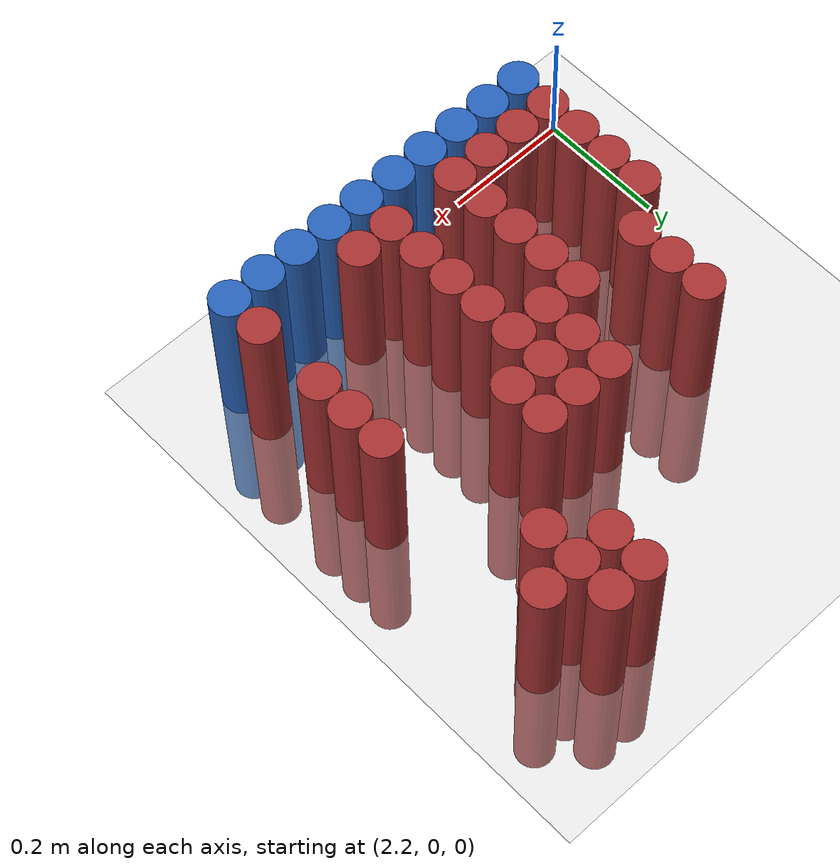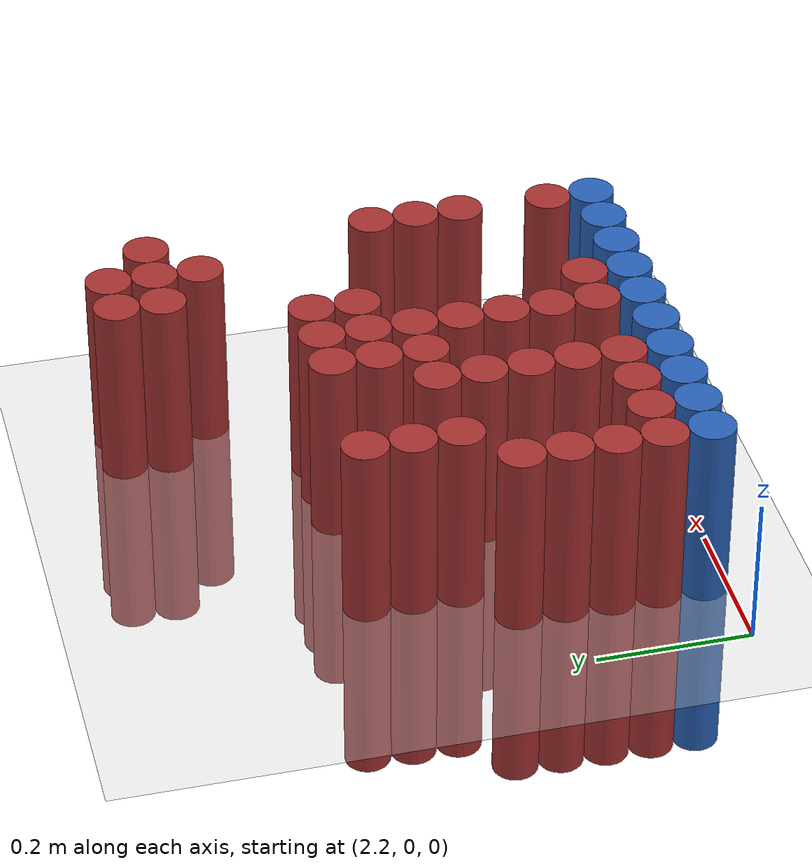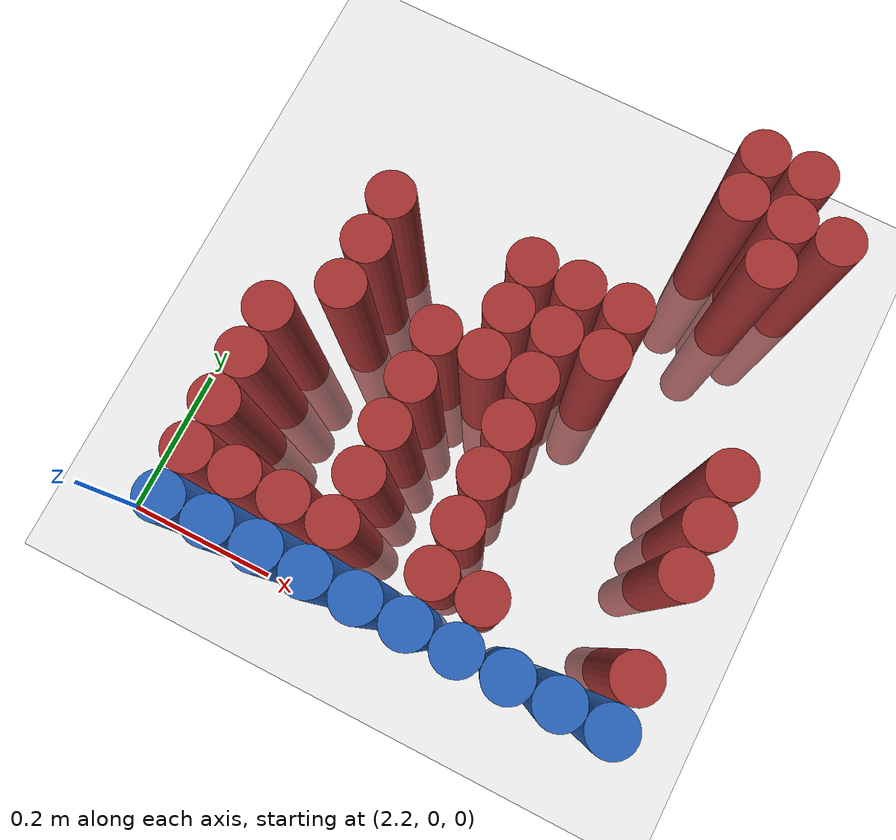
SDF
<sdf version="1.6">
 <world name="default">
  <model name="ground_plane">
   <static>1</static>
   <link name="link">
    <collision name="collision">
     <geometry><plane><normal>0 0 1</normal><size>100 100</size></plane></geometry>
     <surface><friction><ode><mu>100</mu><mu2>50</mu2></ode></friction></surface>
    </collision>
    <visual name="visual">
     <cast_shadows>0</cast_shadows>
     <geometry><plane><normal>0 0 1</normal><size>100 100</size></plane></geometry>
     <material>
      <script><uri>file://media/materials/scripts/gazebo.material</uri><name>Gazebo/Grey</name></script>
     </material>
    </visual>
   </link>
  </model>
  <model name="unit_cylinder_212">
   <static>1</static>
   <pose>2.730000 0.690000 0.000000 0.000000 0.000000 0.000000</pose>
   <link name="link">
    <inertial>
     <mass>1</mass>
     <inertia><ixx>0.145833</ixx><ixy>0</ixy><ixz>0</ixz><iyy>0.145833</iyy><iyz>0</iyz><izz>0.125</izz></inertia>
    </inertial>
    <collision name="collision">
     <geometry><cylinder><radius>0.030000</radius><length>0.5</length></cylinder></geometry>
    </collision>
    <visual name="visual">
     <geometry><cylinder><radius>0.030000</radius><length>0.5</length></cylinder></geometry>
     <material>
      <ambient>0.648000 0.192000 0.192000 1</ambient>
      <diffuse>0.648000 0.192000 0.192000 1</diffuse>
     </material>
     <material>
      <script><name>Gazebo/Grey</name><uri>file://media/materials/scripts/gazebo.material</uri></script>
     </material>
    </visual>
   </link>
  </model>
  <model name="unit_cylinder_213">
   <static>1</static>
   <pose>2.790000 0.690000 0.000000 0.000000 0.000000 0.000000</pose>
   <link name="link">
    <inertial>
     <mass>1</mass>
     <inertia><ixx>0.145833</ixx><ixy>0</ixy><ixz>0</ixz><iyy>0.145833</iyy><iyz>0</iyz><izz>0.125</izz></inertia>
    </inertial>
    <collision name="collision">
     <geometry><cylinder><radius>0.030000</radius><length>0.5</length></cylinder></geometry>
    </collision>
    <visual name="visual">
     <geometry><cylinder><radius>0.030000</radius><length>0.5</length></cylinder></geometry>
     <material>
      <ambient>0.648000 0.192000 0.192000 1</ambient>
      <diffuse>0.648000 0.192000 0.192000 1</diffuse>
     </material>
     <material>
      <script><name>Gazebo/Grey</name><uri>file://media/materials/scripts/gazebo.material</uri></script>
     </material>
    </visual>
   </link>
  </model>
  <model name="unit_cylinder_218">
   <static>1</static>
   <pose>2.730000 0.630000 0.000000 0.000000 0.000000 0.000000</pose>
   <link name="link">
    <inertial>
     <mass>1</mass>
     <inertia><ixx>0.145833</ixx><ixy>0</ixy><ixz>0</ixz><iyy>0.145833</iyy><iyz>0</iyz><izz>0.125</izz></inertia>
    </inertial>
    <collision name="collision">
     <geometry><cylinder><radius>0.030000</radius><length>0.5</length></cylinder></geometry>
    </collision>
    <visual name="visual">
     <geometry><cylinder><radius>0.030000</radius><length>0.5</length></cylinder></geometry>
     <material>
      <ambient>0.648000 0.192000 0.192000 1</ambient>
      <diffuse>0.648000 0.192000 0.192000 1</diffuse>
     </material>
     <material>
      <script><name>Gazebo/Grey</name><uri>file://media/materials/scripts/gazebo.material</uri></script>
     </material>
    </visual>
   </link>
  </model>
  <model name="unit_cylinder_219">
   <static>1</static>
   <pose>2.790000 0.630000 0.000000 0.000000 0.000000 0.000000</pose>
   <link name="link">
    <inertial>
     <mass>1</mass>
     <inertia><ixx>0.145833</ixx><ixy>0</ixy><ixz>0</ixz><iyy>0.145833</iyy><iyz>0</iyz><izz>0.125</izz></inertia>
    </inertial>
    <collision name="collision">
     <geometry><cylinder><radius>0.030000</radius><length>0.5</length></cylinder></geometry>
    </collision>
    <visual name="visual">
     <geometry><cylinder><radius>0.030000</radius><length>0.5</length></cylinder></geometry>
     <material>
      <ambient>0.648000 0.192000 0.192000 1</ambient>
      <diffuse>0.648000 0.192000 0.192000 1</diffuse>
     </material>
     <material>
      <script><name>Gazebo/Grey</name><uri>file://media/materials/scripts/gazebo.material</uri></script>
     </material>
    </visual>
   </link>
  </model>
  <model name="unit_cylinder_220">
   <static>1</static>
   <pose>2.850000 0.630000 0.000000 0.000000 0.000000 0.000000</pose>
   <link name="link">
    <inertial>
     <mass>1</mass>
     <inertia><ixx>0.145833</ixx><ixy>0</ixy><ixz>0</ixz><iyy>0.145833</iyy><iyz>0</iyz><izz>0.125</izz></inertia>
    </inertial>
    <collision name="collision">
     <geometry><cylinder><radius>0.030000</radius><length>0.5</length></cylinder></geometry>
    </collision>
    <visual name="visual">
     <geometry><cylinder><radius>0.030000</radius><length>0.5</length></cylinder></geometry>
     <material>
      <ambient>0.648000 0.192000 0.192000 1</ambient>
      <diffuse>0.648000 0.192000 0.192000 1</diffuse>
     </material>
     <material>
      <script><name>Gazebo/Grey</name><uri>file://media/materials/scripts/gazebo.material</uri></script>
     </material>
    </visual>
   </link>
  </model>
  <model name="unit_cylinder_225">
   <static>1</static>
   <pose>2.790000 0.570000 0.000000 0.000000 0.000000 0.000000</pose>
   <link name="link">
    <inertial>
     <mass>1</mass>
     <inertia><ixx>0.145833</ixx><ixy>0</ixy><ixz>0</ixz><iyy>0.145833</iyy><iyz>0</iyz><izz>0.125</izz></inertia>
    </inertial>
    <collision name="collision">
     <geometry><cylinder><radius>0.030000</radius><length>0.5</length></cylinder></geometry>
    </collision>
    <visual name="visual">
     <geometry><cylinder><radius>0.030000</radius><length>0.5</length></cylinder></geometry>
     <material>
      <ambient>0.648000 0.192000 0.192000 1</ambient>
      <diffuse>0.648000 0.192000 0.192000 1</diffuse>
     </material>
     <material>
      <script><name>Gazebo/Grey</name><uri>file://media/materials/scripts/gazebo.material</uri></script>
     </material>
    </visual>
   </link>
  </model>
  <model name="unit_cylinder_237">
   <static>1</static>
   <pose>2.370000 0.450000 0.000000 0.000000 0.000000 0.000000</pose>
   <link name="link">
    <inertial>
     <mass>1</mass>
     <inertia><ixx>0.145833</ixx><ixy>0</ixy><ixz>0</ixz><iyy>0.145833</iyy><iyz>0</iyz><izz>0.125</izz></inertia>
    </inertial>
    <collision name="collision">
     <geometry><cylinder><radius>0.030000</radius><length>0.5</length></cylinder></geometry>
    </collision>
    <visual name="visual">
     <geometry><cylinder><radius>0.030000</radius><length>0.5</length></cylinder></geometry>
     <material>
      <ambient>0.648000 0.192000 0.192000 1</ambient>
      <diffuse>0.648000 0.192000 0.192000 1</diffuse>
     </material>
     <material>
      <script><name>Gazebo/Grey</name><uri>file://media/materials/scripts/gazebo.material</uri></script>
     </material>
    </visual>
   </link>
  </model>
  <model name="unit_cylinder_238">
   <static>1</static>
   <pose>2.550000 0.450000 0.000000 0.000000 0.000000 0.000000</pose>
   <link name="link">
    <inertial>
     <mass>1</mass>
     <inertia><ixx>0.145833</ixx><ixy>0</ixy><ixz>0</ixz><iyy>0.145833</iyy><iyz>0</iyz><izz>0.125</izz></inertia>
    </inertial>
    <collision name="collision">
     <geometry><cylinder><radius>0.030000</radius><length>0.5</length></cylinder></geometry>
    </collision>
    <visual name="visual">
     <geometry><cylinder><radius>0.030000</radius><length>0.5</length></cylinder></geometry>
     <material>
      <ambient>0.648000 0.192000 0.192000 1</ambient>
      <diffuse>0.648000 0.192000 0.192000 1</diffuse>
     </material>
     <material>
      <script><name>Gazebo/Grey</name><uri>file://media/materials/scripts/gazebo.material</uri></script>
     </material>
    </visual>
   </link>
  </model>
  <model name="unit_cylinder_239">
   <static>1</static>
   <pose>2.610000 0.450000 0.000000 0.000000 0.000000 0.000000</pose>
   <link name="link">
    <inertial>
     <mass>1</mass>
     <inertia><ixx>0.145833</ixx><ixy>0</ixy><ixz>0</ixz><iyy>0.145833</iyy><iyz>0</iyz><izz>0.125</izz></inertia>
    </inertial>
    <collision name="collision">
     <geometry><cylinder><radius>0.030000</radius><length>0.5</length></cylinder></geometry>
    </collision>
    <visual name="visual">
     <geometry><cylinder><radius>0.030000</radius><length>0.5</length></cylinder></geometry>
     <material>
      <ambient>0.648000 0.192000 0.192000 1</ambient>
      <diffuse>0.648000 0.192000 0.192000 1</diffuse>
     </material>
     <material>
      <script><name>Gazebo/Grey</name><uri>file://media/materials/scripts/gazebo.material</uri></script>
     </material>
    </visual>
   </link>
  </model>
  <model name="unit_cylinder_240">
   <static>1</static>
   <pose>2.670000 0.450000 0.000000 0.000000 0.000000 0.000000</pose>
   <link name="link">
    <inertial>
     <mass>1</mass>
     <inertia><ixx>0.145833</ixx><ixy>0</ixy><ixz>0</ixz><iyy>0.145833</iyy><iyz>0</iyz><izz>0.125</izz></inertia>
    </inertial>
    <collision name="collision">
     <geometry><cylinder><radius>0.030000</radius><length>0.5</length></cylinder></geometry>
    </collision>
    <visual name="visual">
     <geometry><cylinder><radius>0.030000</radius><length>0.5</length></cylinder></geometry>
     <material>
      <ambient>0.648000 0.192000 0.192000 1</ambient>
      <diffuse>0.648000 0.192000 0.192000 1</diffuse>
     </material>
     <material>
      <script><name>Gazebo/Grey</name><uri>file://media/materials/scripts/gazebo.material</uri></script>
     </material>
    </visual>
   </link>
  </model>
  <model name="unit_cylinder_243">
   <static>1</static>
   <pose>2.370000 0.390000 0.000000 0.000000 0.000000 0.000000</pose>
   <link name="link">
    <inertial>
     <mass>1</mass>
     <inertia><ixx>0.145833</ixx><ixy>0</ixy><ixz>0</ixz><iyy>0.145833</iyy><iyz>0</iyz><izz>0.125</izz></inertia>
    </inertial>
    <collision name="collision">
     <geometry><cylinder><radius>0.030000</radius><length>0.5</length></cylinder></geometry>
    </collision>
    <visual name="visual">
     <geometry><cylinder><radius>0.030000</radius><length>0.5</length></cylinder></geometry>
     <material>
      <ambient>0.648000 0.192000 0.192000 1</ambient>
      <diffuse>0.648000 0.192000 0.192000 1</diffuse>
     </material>
     <material>
      <script><name>Gazebo/Grey</name><uri>file://media/materials/scripts/gazebo.material</uri></script>
     </material>
    </visual>
   </link>
  </model>
  <model name="unit_cylinder_244">
   <static>1</static>
   <pose>2.550000 0.390000 0.000000 0.000000 0.000000 0.000000</pose>
   <link name="link">
    <inertial>
     <mass>1</mass>
     <inertia><ixx>0.145833</ixx><ixy>0</ixy><ixz>0</ixz><iyy>0.145833</iyy><iyz>0</iyz><izz>0.125</izz></inertia>
    </inertial>
    <collision name="collision">
     <geometry><cylinder><radius>0.030000</radius><length>0.5</length></cylinder></geometry>
    </collision>
    <visual name="visual">
     <geometry><cylinder><radius>0.030000</radius><length>0.5</length></cylinder></geometry>
     <material>
      <ambient>0.648000 0.192000 0.192000 1</ambient>
      <diffuse>0.648000 0.192000 0.192000 1</diffuse>
     </material>
     <material>
      <script><name>Gazebo/Grey</name><uri>file://media/materials/scripts/gazebo.material</uri></script>
     </material>
    </visual>
   </link>
  </model>
  <model name="unit_cylinder_245">
   <static>1</static>
   <pose>2.610000 0.390000 0.000000 0.000000 0.000000 0.000000</pose>
   <link name="link">
    <inertial>
     <mass>1</mass>
     <inertia><ixx>0.145833</ixx><ixy>0</ixy><ixz>0</ixz><iyy>0.145833</iyy><iyz>0</iyz><izz>0.125</izz></inertia>
    </inertial>
    <collision name="collision">
     <geometry><cylinder><radius>0.030000</radius><length>0.5</length></cylinder></geometry>
    </collision>
    <visual name="visual">
     <geometry><cylinder><radius>0.030000</radius><length>0.5</length></cylinder></geometry>
     <material>
      <ambient>0.648000 0.192000 0.192000 1</ambient>
      <diffuse>0.648000 0.192000 0.192000 1</diffuse>
     </material>
     <material>
      <script><name>Gazebo/Grey</name><uri>file://media/materials/scripts/gazebo.material</uri></script>
     </material>
    </visual>
   </link>
  </model>
  <model name="unit_cylinder_246">
   <static>1</static>
   <pose>2.670000 0.390000 0.000000 0.000000 0.000000 0.000000</pose>
   <link name="link">
    <inertial>
     <mass>1</mass>
     <inertia><ixx>0.145833</ixx><ixy>0</ixy><ixz>0</ixz><iyy>0.145833</iyy><iyz>0</iyz><izz>0.125</izz></inertia>
    </inertial>
    <collision name="collision">
     <geometry><cylinder><radius>0.030000</radius><length>0.5</length></cylinder></geometry>
    </collision>
    <visual name="visual">
     <geometry><cylinder><radius>0.030000</radius><length>0.5</length></cylinder></geometry>
     <material>
      <ambient>0.648000 0.192000 0.192000 1</ambient>
      <diffuse>0.648000 0.192000 0.192000 1</diffuse>
     </material>
     <material>
      <script><name>Gazebo/Grey</name><uri>file://media/materials/scripts/gazebo.material</uri></script>
     </material>
    </visual>
   </link>
  </model>
  <model name="unit_cylinder_250">
   <static>1</static>
   <pose>2.370000 0.330000 0.000000 0.000000 0.000000 0.000000</pose>
   <link name="link">
    <inertial>
     <mass>1</mass>
     <inertia><ixx>0.145833</ixx><ixy>0</ixy><ixz>0</ixz><iyy>0.145833</iyy><iyz>0</iyz><izz>0.125</izz></inertia>
    </inertial>
    <collision name="collision">
     <geometry><cylinder><radius>0.030000</radius><length>0.5</length></cylinder></geometry>
    </collision>
    <visual name="visual">
     <geometry><cylinder><radius>0.030000</radius><length>0.5</length></cylinder></geometry>
     <material>
      <ambient>0.648000 0.192000 0.192000 1</ambient>
      <diffuse>0.648000 0.192000 0.192000 1</diffuse>
     </material>
     <material>
      <script><name>Gazebo/Grey</name><uri>file://media/materials/scripts/gazebo.material</uri></script>
     </material>
    </visual>
   </link>
  </model>
  <model name="unit_cylinder_251">
   <static>1</static>
   <pose>2.490000 0.330000 0.000000 0.000000 0.000000 0.000000</pose>
   <link name="link">
    <inertial>
     <mass>1</mass>
     <inertia><ixx>0.145833</ixx><ixy>0</ixy><ixz>0</ixz><iyy>0.145833</iyy><iyz>0</iyz><izz>0.125</izz></inertia>
    </inertial>
    <collision name="collision">
     <geometry><cylinder><radius>0.030000</radius><length>0.5</length></cylinder></geometry>
    </collision>
    <visual name="visual">
     <geometry><cylinder><radius>0.030000</radius><length>0.5</length></cylinder></geometry>
     <material>
      <ambient>0.648000 0.192000 0.192000 1</ambient>
      <diffuse>0.648000 0.192000 0.192000 1</diffuse>
     </material>
     <material>
      <script><name>Gazebo/Grey</name><uri>file://media/materials/scripts/gazebo.material</uri></script>
     </material>
    </visual>
   </link>
  </model>
  <model name="unit_cylinder_252">
   <static>1</static>
   <pose>2.550000 0.330000 0.000000 0.000000 0.000000 0.000000</pose>
   <link name="link">
    <inertial>
     <mass>1</mass>
     <inertia><ixx>0.145833</ixx><ixy>0</ixy><ixz>0</ixz><iyy>0.145833</iyy><iyz>0</iyz><izz>0.125</izz></inertia>
    </inertial>
    <collision name="collision">
     <geometry><cylinder><radius>0.030000</radius><length>0.5</length></cylinder></geometry>
    </collision>
    <visual name="visual">
     <geometry><cylinder><radius>0.030000</radius><length>0.5</length></cylinder></geometry>
     <material>
      <ambient>0.648000 0.192000 0.192000 1</ambient>
      <diffuse>0.648000 0.192000 0.192000 1</diffuse>
     </material>
     <material>
      <script><name>Gazebo/Grey</name><uri>file://media/materials/scripts/gazebo.material</uri></script>
     </material>
    </visual>
   </link>
  </model>
  <model name="unit_cylinder_253">
   <static>1</static>
   <pose>2.610000 0.330000 0.000000 0.000000 0.000000 0.000000</pose>
   <link name="link">
    <inertial>
     <mass>1</mass>
     <inertia><ixx>0.145833</ixx><ixy>0</ixy><ixz>0</ixz><iyy>0.145833</iyy><iyz>0</iyz><izz>0.125</izz></inertia>
    </inertial>
    <collision name="collision">
     <geometry><cylinder><radius>0.030000</radius><length>0.5</length></cylinder></geometry>
    </collision>
    <visual name="visual">
     <geometry><cylinder><radius>0.030000</radius><length>0.5</length></cylinder></geometry>
     <material>
      <ambient>0.648000 0.192000 0.192000 1</ambient>
      <diffuse>0.648000 0.192000 0.192000 1</diffuse>
     </material>
     <material>
      <script><name>Gazebo/Grey</name><uri>file://media/materials/scripts/gazebo.material</uri></script>
     </material>
    </visual>
   </link>
  </model>
  <model name="unit_cylinder_254">
   <static>1</static>
   <pose>2.850000 0.330000 0.000000 0.000000 0.000000 0.000000</pose>
   <link name="link">
    <inertial>
     <mass>1</mass>
     <inertia><ixx>0.145833</ixx><ixy>0</ixy><ixz>0</ixz><iyy>0.145833</iyy><iyz>0</iyz><izz>0.125</izz></inertia>
    </inertial>
    <collision name="collision">
     <geometry><cylinder><radius>0.030000</radius><length>0.5</length></cylinder></geometry>
    </collision>
    <visual name="visual">
     <geometry><cylinder><radius>0.030000</radius><length>0.5</length></cylinder></geometry>
     <material>
      <ambient>0.648000 0.192000 0.192000 1</ambient>
      <diffuse>0.648000 0.192000 0.192000 1</diffuse>
     </material>
     <material>
      <script><name>Gazebo/Grey</name><uri>file://media/materials/scripts/gazebo.material</uri></script>
     </material>
    </visual>
   </link>
  </model>
  <model name="unit_cylinder_259">
   <static>1</static>
   <pose>2.310000 0.270000 0.000000 0.000000 0.000000 0.000000</pose>
   <link name="link">
    <inertial>
     <mass>1</mass>
     <inertia><ixx>0.145833</ixx><ixy>0</ixy><ixz>0</ixz><iyy>0.145833</iyy><iyz>0</iyz><izz>0.125</izz></inertia>
    </inertial>
    <collision name="collision">
     <geometry><cylinder><radius>0.030000</radius><length>0.5</length></cylinder></geometry>
    </collision>
    <visual name="visual">
     <geometry><cylinder><radius>0.030000</radius><length>0.5</length></cylinder></geometry>
     <material>
      <ambient>0.648000 0.192000 0.192000 1</ambient>
      <diffuse>0.648000 0.192000 0.192000 1</diffuse>
     </material>
     <material>
      <script><name>Gazebo/Grey</name><uri>file://media/materials/scripts/gazebo.material</uri></script>
     </material>
    </visual>
   </link>
  </model>
  <model name="unit_cylinder_260">
   <static>1</static>
   <pose>2.490000 0.270000 0.000000 0.000000 0.000000 0.000000</pose>
   <link name="link">
    <inertial>
     <mass>1</mass>
     <inertia><ixx>0.145833</ixx><ixy>0</ixy><ixz>0</ixz><iyy>0.145833</iyy><iyz>0</iyz><izz>0.125</izz></inertia>
    </inertial>
    <collision name="collision">
     <geometry><cylinder><radius>0.030000</radius><length>0.5</length></cylinder></geometry>
    </collision>
    <visual name="visual">
     <geometry><cylinder><radius>0.030000</radius><length>0.5</length></cylinder></geometry>
     <material>
      <ambient>0.648000 0.192000 0.192000 1</ambient>
      <diffuse>0.648000 0.192000 0.192000 1</diffuse>
     </material>
     <material>
      <script><name>Gazebo/Grey</name><uri>file://media/materials/scripts/gazebo.material</uri></script>
     </material>
    </visual>
   </link>
  </model>
  <model name="unit_cylinder_261">
   <static>1</static>
   <pose>2.610000 0.270000 0.000000 0.000000 0.000000 0.000000</pose>
   <link name="link">
    <inertial>
     <mass>1</mass>
     <inertia><ixx>0.145833</ixx><ixy>0</ixy><ixz>0</ixz><iyy>0.145833</iyy><iyz>0</iyz><izz>0.125</izz></inertia>
    </inertial>
    <collision name="collision">
     <geometry><cylinder><radius>0.030000</radius><length>0.5</length></cylinder></geometry>
    </collision>
    <visual name="visual">
     <geometry><cylinder><radius>0.030000</radius><length>0.5</length></cylinder></geometry>
     <material>
      <ambient>0.648000 0.192000 0.192000 1</ambient>
      <diffuse>0.648000 0.192000 0.192000 1</diffuse>
     </material>
     <material>
      <script><name>Gazebo/Grey</name><uri>file://media/materials/scripts/gazebo.material</uri></script>
     </material>
    </visual>
   </link>
  </model>
  <model name="unit_cylinder_262">
   <static>1</static>
   <pose>2.850000 0.270000 0.000000 0.000000 0.000000 0.000000</pose>
   <link name="link">
    <inertial>
     <mass>1</mass>
     <inertia><ixx>0.145833</ixx><ixy>0</ixy><ixz>0</ixz><iyy>0.145833</iyy><iyz>0</iyz><izz>0.125</izz></inertia>
    </inertial>
    <collision name="collision">
     <geometry><cylinder><radius>0.030000</radius><length>0.5</length></cylinder></geometry>
    </collision>
    <visual name="visual">
     <geometry><cylinder><radius>0.030000</radius><length>0.5</length></cylinder></geometry>
     <material>
      <ambient>0.648000 0.192000 0.192000 1</ambient>
      <diffuse>0.648000 0.192000 0.192000 1</diffuse>
     </material>
     <material>
      <script><name>Gazebo/Grey</name><uri>file://media/materials/scripts/gazebo.material</uri></script>
     </material>
    </visual>
   </link>
  </model>
  <model name="unit_cylinder_268">
   <static>1</static>
   <pose>2.310000 0.210000 0.000000 0.000000 0.000000 0.000000</pose>
   <link name="link">
    <inertial>
     <mass>1</mass>
     <inertia><ixx>0.145833</ixx><ixy>0</ixy><ixz>0</ixz><iyy>0.145833</iyy><iyz>0</iyz><izz>0.125</izz></inertia>
    </inertial>
    <collision name="collision">
     <geometry><cylinder><radius>0.030000</radius><length>0.5</length></cylinder></geometry>
    </collision>
    <visual name="visual">
     <geometry><cylinder><radius>0.030000</radius><length>0.5</length></cylinder></geometry>
     <material>
      <ambient>0.648000 0.192000 0.192000 1</ambient>
      <diffuse>0.648000 0.192000 0.192000 1</diffuse>
     </material>
     <material>
      <script><name>Gazebo/Grey</name><uri>file://media/materials/scripts/gazebo.material</uri></script>
     </material>
    </visual>
   </link>
  </model>
  <model name="unit_cylinder_269">
   <static>1</static>
   <pose>2.490000 0.210000 0.000000 0.000000 0.000000 0.000000</pose>
   <link name="link">
    <inertial>
     <mass>1</mass>
     <inertia><ixx>0.145833</ixx><ixy>0</ixy><ixz>0</ixz><iyy>0.145833</iyy><iyz>0</iyz><izz>0.125</izz></inertia>
    </inertial>
    <collision name="collision">
     <geometry><cylinder><radius>0.030000</radius><length>0.5</length></cylinder></geometry>
    </collision>
    <visual name="visual">
     <geometry><cylinder><radius>0.030000</radius><length>0.5</length></cylinder></geometry>
     <material>
      <ambient>0.648000 0.192000 0.192000 1</ambient>
      <diffuse>0.648000 0.192000 0.192000 1</diffuse>
     </material>
     <material>
      <script><name>Gazebo/Grey</name><uri>file://media/materials/scripts/gazebo.material</uri></script>
     </material>
    </visual>
   </link>
  </model>
  <model name="unit_cylinder_270">
   <static>1</static>
   <pose>2.610000 0.210000 0.000000 0.000000 0.000000 0.000000</pose>
   <link name="link">
    <inertial>
     <mass>1</mass>
     <inertia><ixx>0.145833</ixx><ixy>0</ixy><ixz>0</ixz><iyy>0.145833</iyy><iyz>0</iyz><izz>0.125</izz></inertia>
    </inertial>
    <collision name="collision">
     <geometry><cylinder><radius>0.030000</radius><length>0.5</length></cylinder></geometry>
    </collision>
    <visual name="visual">
     <geometry><cylinder><radius>0.030000</radius><length>0.5</length></cylinder></geometry>
     <material>
      <ambient>0.648000 0.192000 0.192000 1</ambient>
      <diffuse>0.648000 0.192000 0.192000 1</diffuse>
     </material>
     <material>
      <script><name>Gazebo/Grey</name><uri>file://media/materials/scripts/gazebo.material</uri></script>
     </material>
    </visual>
   </link>
  </model>
  <model name="unit_cylinder_271">
   <static>1</static>
   <pose>2.850000 0.210000 0.000000 0.000000 0.000000 0.000000</pose>
   <link name="link">
    <inertial>
     <mass>1</mass>
     <inertia><ixx>0.145833</ixx><ixy>0</ixy><ixz>0</ixz><iyy>0.145833</iyy><iyz>0</iyz><izz>0.125</izz></inertia>
    </inertial>
    <collision name="collision">
     <geometry><cylinder><radius>0.030000</radius><length>0.5</length></cylinder></geometry>
    </collision>
    <visual name="visual">
     <geometry><cylinder><radius>0.030000</radius><length>0.5</length></cylinder></geometry>
     <material>
      <ambient>0.648000 0.192000 0.192000 1</ambient>
      <diffuse>0.648000 0.192000 0.192000 1</diffuse>
     </material>
     <material>
      <script><name>Gazebo/Grey</name><uri>file://media/materials/scripts/gazebo.material</uri></script>
     </material>
    </visual>
   </link>
  </model>
  <model name="unit_cylinder_275">
   <static>1</static>
   <pose>2.310000 0.150000 0.000000 0.000000 0.000000 0.000000</pose>
   <link name="link">
    <inertial>
     <mass>1</mass>
     <inertia><ixx>0.145833</ixx><ixy>0</ixy><ixz>0</ixz><iyy>0.145833</iyy><iyz>0</iyz><izz>0.125</izz></inertia>
    </inertial>
    <collision name="collision">
     <geometry><cylinder><radius>0.030000</radius><length>0.5</length></cylinder></geometry>
    </collision>
    <visual name="visual">
     <geometry><cylinder><radius>0.030000</radius><length>0.5</length></cylinder></geometry>
     <material>
      <ambient>0.648000 0.192000 0.192000 1</ambient>
      <diffuse>0.648000 0.192000 0.192000 1</diffuse>
     </material>
     <material>
      <script><name>Gazebo/Grey</name><uri>file://media/materials/scripts/gazebo.material</uri></script>
     </material>
    </visual>
   </link>
  </model>
  <model name="unit_cylinder_276">
   <static>1</static>
   <pose>2.490000 0.150000 0.000000 0.000000 0.000000 0.000000</pose>
   <link name="link">
    <inertial>
     <mass>1</mass>
     <inertia><ixx>0.145833</ixx><ixy>0</ixy><ixz>0</ixz><iyy>0.145833</iyy><iyz>0</iyz><izz>0.125</izz></inertia>
    </inertial>
    <collision name="collision">
     <geometry><cylinder><radius>0.030000</radius><length>0.5</length></cylinder></geometry>
    </collision>
    <visual name="visual">
     <geometry><cylinder><radius>0.030000</radius><length>0.5</length></cylinder></geometry>
     <material>
      <ambient>0.648000 0.192000 0.192000 1</ambient>
      <diffuse>0.648000 0.192000 0.192000 1</diffuse>
     </material>
     <material>
      <script><name>Gazebo/Grey</name><uri>file://media/materials/scripts/gazebo.material</uri></script>
     </material>
    </visual>
   </link>
  </model>
  <model name="unit_cylinder_277">
   <static>1</static>
   <pose>2.610000 0.150000 0.000000 0.000000 0.000000 0.000000</pose>
   <link name="link">
    <inertial>
     <mass>1</mass>
     <inertia><ixx>0.145833</ixx><ixy>0</ixy><ixz>0</ixz><iyy>0.145833</iyy><iyz>0</iyz><izz>0.125</izz></inertia>
    </inertial>
    <collision name="collision">
     <geometry><cylinder><radius>0.030000</radius><length>0.5</length></cylinder></geometry>
    </collision>
    <visual name="visual">
     <geometry><cylinder><radius>0.030000</radius><length>0.5</length></cylinder></geometry>
     <material>
      <ambient>0.648000 0.192000 0.192000 1</ambient>
      <diffuse>0.648000 0.192000 0.192000 1</diffuse>
     </material>
     <material>
      <script><name>Gazebo/Grey</name><uri>file://media/materials/scripts/gazebo.material</uri></script>
     </material>
    </visual>
   </link>
  </model>
  <model name="unit_cylinder_285">
   <static>1</static>
   <pose>2.310000 0.090000 0.000000 0.000000 0.000000 0.000000</pose>
   <link name="link">
    <inertial>
     <mass>1</mass>
     <inertia><ixx>0.145833</ixx><ixy>0</ixy><ixz>0</ixz><iyy>0.145833</iyy><iyz>0</iyz><izz>0.125</izz></inertia>
    </inertial>
    <collision name="collision">
     <geometry><cylinder><radius>0.030000</radius><length>0.5</length></cylinder></geometry>
    </collision>
    <visual name="visual">
     <geometry><cylinder><radius>0.030000</radius><length>0.5</length></cylinder></geometry>
     <material>
      <ambient>0.648000 0.192000 0.192000 1</ambient>
      <diffuse>0.648000 0.192000 0.192000 1</diffuse>
     </material>
     <material>
      <script><name>Gazebo/Grey</name><uri>file://media/materials/scripts/gazebo.material</uri></script>
     </material>
    </visual>
   </link>
  </model>
  <model name="unit_cylinder_286">
   <static>1</static>
   <pose>2.370000 0.090000 0.000000 0.000000 0.000000 0.000000</pose>
   <link name="link">
    <inertial>
     <mass>1</mass>
     <inertia><ixx>0.145833</ixx><ixy>0</ixy><ixz>0</ixz><iyy>0.145833</iyy><iyz>0</iyz><izz>0.125</izz></inertia>
    </inertial>
    <collision name="collision">
     <geometry><cylinder><radius>0.030000</radius><length>0.5</length></cylinder></geometry>
    </collision>
    <visual name="visual">
     <geometry><cylinder><radius>0.030000</radius><length>0.5</length></cylinder></geometry>
     <material>
      <ambient>0.648000 0.192000 0.192000 1</ambient>
      <diffuse>0.648000 0.192000 0.192000 1</diffuse>
     </material>
     <material>
      <script><name>Gazebo/Grey</name><uri>file://media/materials/scripts/gazebo.material</uri></script>
     </material>
    </visual>
   </link>
  </model>
  <model name="unit_cylinder_287">
   <static>1</static>
   <pose>2.430000 0.090000 0.000000 0.000000 0.000000 0.000000</pose>
   <link name="link">
    <inertial>
     <mass>1</mass>
     <inertia><ixx>0.145833</ixx><ixy>0</ixy><ixz>0</ixz><iyy>0.145833</iyy><iyz>0</iyz><izz>0.125</izz></inertia>
    </inertial>
    <collision name="collision">
     <geometry><cylinder><radius>0.030000</radius><length>0.5</length></cylinder></geometry>
    </collision>
    <visual name="visual">
     <geometry><cylinder><radius>0.030000</radius><length>0.5</length></cylinder></geometry>
     <material>
      <ambient>0.648000 0.192000 0.192000 1</ambient>
      <diffuse>0.648000 0.192000 0.192000 1</diffuse>
     </material>
     <material>
      <script><name>Gazebo/Grey</name><uri>file://media/materials/scripts/gazebo.material</uri></script>
     </material>
    </visual>
   </link>
  </model>
  <model name="unit_cylinder_288">
   <static>1</static>
   <pose>2.490000 0.090000 0.000000 0.000000 0.000000 0.000000</pose>
   <link name="link">
    <inertial>
     <mass>1</mass>
     <inertia><ixx>0.145833</ixx><ixy>0</ixy><ixz>0</ixz><iyy>0.145833</iyy><iyz>0</iyz><izz>0.125</izz></inertia>
    </inertial>
    <collision name="collision">
     <geometry><cylinder><radius>0.030000</radius><length>0.5</length></cylinder></geometry>
    </collision>
    <visual name="visual">
     <geometry><cylinder><radius>0.030000</radius><length>0.5</length></cylinder></geometry>
     <material>
      <ambient>0.648000 0.192000 0.192000 1</ambient>
      <diffuse>0.648000 0.192000 0.192000 1</diffuse>
     </material>
     <material>
      <script><name>Gazebo/Grey</name><uri>file://media/materials/scripts/gazebo.material</uri></script>
     </material>
    </visual>
   </link>
  </model>
  <model name="unit_cylinder_289">
   <static>1</static>
   <pose>2.610000 0.090000 0.000000 0.000000 0.000000 0.000000</pose>
   <link name="link">
    <inertial>
     <mass>1</mass>
     <inertia><ixx>0.145833</ixx><ixy>0</ixy><ixz>0</ixz><iyy>0.145833</iyy><iyz>0</iyz><izz>0.125</izz></inertia>
    </inertial>
    <collision name="collision">
     <geometry><cylinder><radius>0.030000</radius><length>0.5</length></cylinder></geometry>
    </collision>
    <visual name="visual">
     <geometry><cylinder><radius>0.030000</radius><length>0.5</length></cylinder></geometry>
     <material>
      <ambient>0.648000 0.192000 0.192000 1</ambient>
      <diffuse>0.648000 0.192000 0.192000 1</diffuse>
     </material>
     <material>
      <script><name>Gazebo/Grey</name><uri>file://media/materials/scripts/gazebo.material</uri></script>
     </material>
    </visual>
   </link>
  </model>
  <model name="unit_cylinder_290">
   <static>1</static>
   <pose>2.670000 0.090000 0.000000 0.000000 0.000000 0.000000</pose>
   <link name="link">
    <inertial>
     <mass>1</mass>
     <inertia><ixx>0.145833</ixx><ixy>0</ixy><ixz>0</ixz><iyy>0.145833</iyy><iyz>0</iyz><izz>0.125</izz></inertia>
    </inertial>
    <collision name="collision">
     <geometry><cylinder><radius>0.030000</radius><length>0.5</length></cylinder></geometry>
    </collision>
    <visual name="visual">
     <geometry><cylinder><radius>0.030000</radius><length>0.5</length></cylinder></geometry>
     <material>
      <ambient>0.648000 0.192000 0.192000 1</ambient>
      <diffuse>0.648000 0.192000 0.192000 1</diffuse>
     </material>
     <material>
      <script><name>Gazebo/Grey</name><uri>file://media/materials/scripts/gazebo.material</uri></script>
     </material>
    </visual>
   </link>
  </model>
  <model name="unit_cylinder_291">
   <static>1</static>
   <pose>2.850000 0.090000 0.000000 0.000000 0.000000 0.000000</pose>
   <link name="link">
    <inertial>
     <mass>1</mass>
     <inertia><ixx>0.145833</ixx><ixy>0</ixy><ixz>0</ixz><iyy>0.145833</iyy><iyz>0</iyz><izz>0.125</izz></inertia>
    </inertial>
    <collision name="collision">
     <geometry><cylinder><radius>0.030000</radius><length>0.5</length></cylinder></geometry>
    </collision>
    <visual name="visual">
     <geometry><cylinder><radius>0.030000</radius><length>0.5</length></cylinder></geometry>
     <material>
      <ambient>0.648000 0.192000 0.192000 1</ambient>
      <diffuse>0.648000 0.192000 0.192000 1</diffuse>
     </material>
     <material>
      <script><name>Gazebo/Grey</name><uri>file://media/materials/scripts/gazebo.material</uri></script>
     </material>
    </visual>
   </link>
  </model>
  <model name="unit_cylinder_307">
   <static>1</static>
   <pose>2.310000 0.030000 0.000000 0.000000 0.000000 0.000000</pose>
   <link name="link">
    <inertial>
     <mass>1</mass>
     <inertia><ixx>0.145833</ixx><ixy>0</ixy><ixz>0</ixz><iyy>0.145833</iyy><iyz>0</iyz><izz>0.125</izz></inertia>
    </inertial>
    <collision name="collision">
     <geometry><cylinder><radius>0.030000</radius><length>0.5</length></cylinder></geometry>
    </collision>
    <visual name="visual">
     <geometry><cylinder><radius>0.030000</radius><length>0.5</length></cylinder></geometry>
     <material>
      <ambient>0.152000 0.379000 0.720000 1</ambient>
      <diffuse>0.152000 0.379000 0.720000 1</diffuse>
     </material>
     <material>
      <script><name>Gazebo/Grey</name><uri>file://media/materials/scripts/gazebo.material</uri></script>
     </material>
    </visual>
   </link>
  </model>
  <model name="unit_cylinder_308">
   <static>1</static>
   <pose>2.370000 0.030000 0.000000 0.000000 0.000000 0.000000</pose>
   <link name="link">
    <inertial>
     <mass>1</mass>
     <inertia><ixx>0.145833</ixx><ixy>0</ixy><ixz>0</ixz><iyy>0.145833</iyy><iyz>0</iyz><izz>0.125</izz></inertia>
    </inertial>
    <collision name="collision">
     <geometry><cylinder><radius>0.030000</radius><length>0.5</length></cylinder></geometry>
    </collision>
    <visual name="visual">
     <geometry><cylinder><radius>0.030000</radius><length>0.5</length></cylinder></geometry>
     <material>
      <ambient>0.152000 0.379000 0.720000 1</ambient>
      <diffuse>0.152000 0.379000 0.720000 1</diffuse>
     </material>
     <material>
      <script><name>Gazebo/Grey</name><uri>file://media/materials/scripts/gazebo.material</uri></script>
     </material>
    </visual>
   </link>
  </model>
  <model name="unit_cylinder_309">
   <static>1</static>
   <pose>2.430000 0.030000 0.000000 0.000000 0.000000 0.000000</pose>
   <link name="link">
    <inertial>
     <mass>1</mass>
     <inertia><ixx>0.145833</ixx><ixy>0</ixy><ixz>0</ixz><iyy>0.145833</iyy><iyz>0</iyz><izz>0.125</izz></inertia>
    </inertial>
    <collision name="collision">
     <geometry><cylinder><radius>0.030000</radius><length>0.5</length></cylinder></geometry>
    </collision>
    <visual name="visual">
     <geometry><cylinder><radius>0.030000</radius><length>0.5</length></cylinder></geometry>
     <material>
      <ambient>0.152000 0.379000 0.720000 1</ambient>
      <diffuse>0.152000 0.379000 0.720000 1</diffuse>
     </material>
     <material>
      <script><name>Gazebo/Grey</name><uri>file://media/materials/scripts/gazebo.material</uri></script>
     </material>
    </visual>
   </link>
  </model>
  <model name="unit_cylinder_310">
   <static>1</static>
   <pose>2.490000 0.030000 0.000000 0.000000 0.000000 0.000000</pose>
   <link name="link">
    <inertial>
     <mass>1</mass>
     <inertia><ixx>0.145833</ixx><ixy>0</ixy><ixz>0</ixz><iyy>0.145833</iyy><iyz>0</iyz><izz>0.125</izz></inertia>
    </inertial>
    <collision name="collision">
     <geometry><cylinder><radius>0.030000</radius><length>0.5</length></cylinder></geometry>
    </collision>
    <visual name="visual">
     <geometry><cylinder><radius>0.030000</radius><length>0.5</length></cylinder></geometry>
     <material>
      <ambient>0.152000 0.379000 0.720000 1</ambient>
      <diffuse>0.152000 0.379000 0.720000 1</diffuse>
     </material>
     <material>
      <script><name>Gazebo/Grey</name><uri>file://media/materials/scripts/gazebo.material</uri></script>
     </material>
    </visual>
   </link>
  </model>
  <model name="unit_cylinder_311">
   <static>1</static>
   <pose>2.550000 0.030000 0.000000 0.000000 0.000000 0.000000</pose>
   <link name="link">
    <inertial>
     <mass>1</mass>
     <inertia><ixx>0.145833</ixx><ixy>0</ixy><ixz>0</ixz><iyy>0.145833</iyy><iyz>0</iyz><izz>0.125</izz></inertia>
    </inertial>
    <collision name="collision">
     <geometry><cylinder><radius>0.030000</radius><length>0.5</length></cylinder></geometry>
    </collision>
    <visual name="visual">
     <geometry><cylinder><radius>0.030000</radius><length>0.5</length></cylinder></geometry>
     <material>
      <ambient>0.152000 0.379000 0.720000 1</ambient>
      <diffuse>0.152000 0.379000 0.720000 1</diffuse>
     </material>
     <material>
      <script><name>Gazebo/Grey</name><uri>file://media/materials/scripts/gazebo.material</uri></script>
     </material>
    </visual>
   </link>
  </model>
  <model name="unit_cylinder_312">
   <static>1</static>
   <pose>2.610000 0.030000 0.000000 0.000000 0.000000 0.000000</pose>
   <link name="link">
    <inertial>
     <mass>1</mass>
     <inertia><ixx>0.145833</ixx><ixy>0</ixy><ixz>0</ixz><iyy>0.145833</iyy><iyz>0</iyz><izz>0.125</izz></inertia>
    </inertial>
    <collision name="collision">
     <geometry><cylinder><radius>0.030000</radius><length>0.5</length></cylinder></geometry>
    </collision>
    <visual name="visual">
     <geometry><cylinder><radius>0.030000</radius><length>0.5</length></cylinder></geometry>
     <material>
      <ambient>0.152000 0.379000 0.720000 1</ambient>
      <diffuse>0.152000 0.379000 0.720000 1</diffuse>
     </material>
     <material>
      <script><name>Gazebo/Grey</name><uri>file://media/materials/scripts/gazebo.material</uri></script>
     </material>
    </visual>
   </link>
  </model>
  <model name="unit_cylinder_313">
   <static>1</static>
   <pose>2.670000 0.030000 0.000000 0.000000 0.000000 0.000000</pose>
   <link name="link">
    <inertial>
     <mass>1</mass>
     <inertia><ixx>0.145833</ixx><ixy>0</ixy><ixz>0</ixz><iyy>0.145833</iyy><iyz>0</iyz><izz>0.125</izz></inertia>
    </inertial>
    <collision name="collision">
     <geometry><cylinder><radius>0.030000</radius><length>0.5</length></cylinder></geometry>
    </collision>
    <visual name="visual">
     <geometry><cylinder><radius>0.030000</radius><length>0.5</length></cylinder></geometry>
     <material>
      <ambient>0.152000 0.379000 0.720000 1</ambient>
      <diffuse>0.152000 0.379000 0.720000 1</diffuse>
     </material>
     <material>
      <script><name>Gazebo/Grey</name><uri>file://media/materials/scripts/gazebo.material</uri></script>
     </material>
    </visual>
   </link>
  </model>
  <model name="unit_cylinder_314">
   <static>1</static>
   <pose>2.730000 0.030000 0.000000 0.000000 0.000000 0.000000</pose>
   <link name="link">
    <inertial>
     <mass>1</mass>
     <inertia><ixx>0.145833</ixx><ixy>0</ixy><ixz>0</ixz><iyy>0.145833</iyy><iyz>0</iyz><izz>0.125</izz></inertia>
    </inertial>
    <collision name="collision">
     <geometry><cylinder><radius>0.030000</radius><length>0.5</length></cylinder></geometry>
    </collision>
    <visual name="visual">
     <geometry><cylinder><radius>0.030000</radius><length>0.5</length></cylinder></geometry>
     <material>
      <ambient>0.152000 0.379000 0.720000 1</ambient>
      <diffuse>0.152000 0.379000 0.720000 1</diffuse>
     </material>
     <material>
      <script><name>Gazebo/Grey</name><uri>file://media/materials/scripts/gazebo.material</uri></script>
     </material>
    </visual>
   </link>
  </model>
  <model name="unit_cylinder_315">
   <static>1</static>
   <pose>2.790000 0.030000 0.000000 0.000000 0.000000 0.000000</pose>
   <link name="link">
    <inertial>
     <mass>1</mass>
     <inertia><ixx>0.145833</ixx><ixy>0</ixy><ixz>0</ixz><iyy>0.145833</iyy><iyz>0</iyz><izz>0.125</izz></inertia>
    </inertial>
    <collision name="collision">
     <geometry><cylinder><radius>0.030000</radius><length>0.5</length></cylinder></geometry>
    </collision>
    <visual name="visual">
     <geometry><cylinder><radius>0.030000</radius><length>0.5</length></cylinder></geometry>
     <material>
      <ambient>0.152000 0.379000 0.720000 1</ambient>
      <diffuse>0.152000 0.379000 0.720000 1</diffuse>
     </material>
     <material>
      <script><name>Gazebo/Grey</name><uri>file://media/materials/scripts/gazebo.material</uri></script>
     </material>
    </visual>
   </link>
  </model>
  <model name="unit_cylinder_316">
   <static>1</static>
   <pose>2.850000 0.030000 0.000000 0.000000 0.000000 0.000000</pose>
   <link name="link">
    <inertial>
     <mass>1</mass>
     <inertia><ixx>0.145833</ixx><ixy>0</ixy><ixz>0</ixz><iyy>0.145833</iyy><iyz>0</iyz><izz>0.125</izz></inertia>
    </inertial>
    <collision name="collision">
     <geometry><cylinder><radius>0.030000</radius><length>0.5</length></cylinder></geometry>
    </collision>
    <visual name="visual">
     <geometry><cylinder><radius>0.030000</radius><length>0.5</length></cylinder></geometry>
     <material>
      <ambient>0.152000 0.379000 0.720000 1</ambient>
      <diffuse>0.152000 0.379000 0.720000 1</diffuse>
     </material>
     <material>
      <script><name>Gazebo/Grey</name><uri>file://media/materials/scripts/gazebo.material</uri></script>
     </material>
    </visual>
   </link>
  </model>
 </world>
</sdf>
